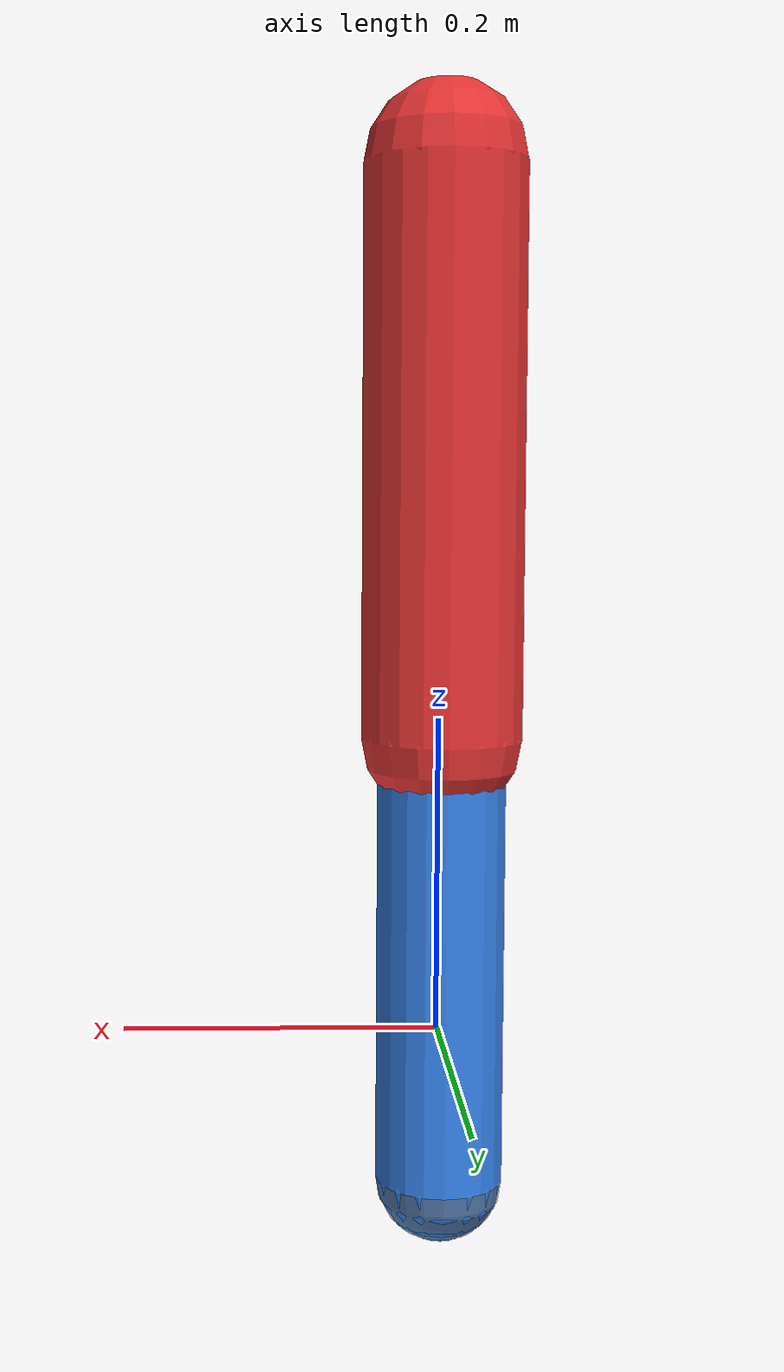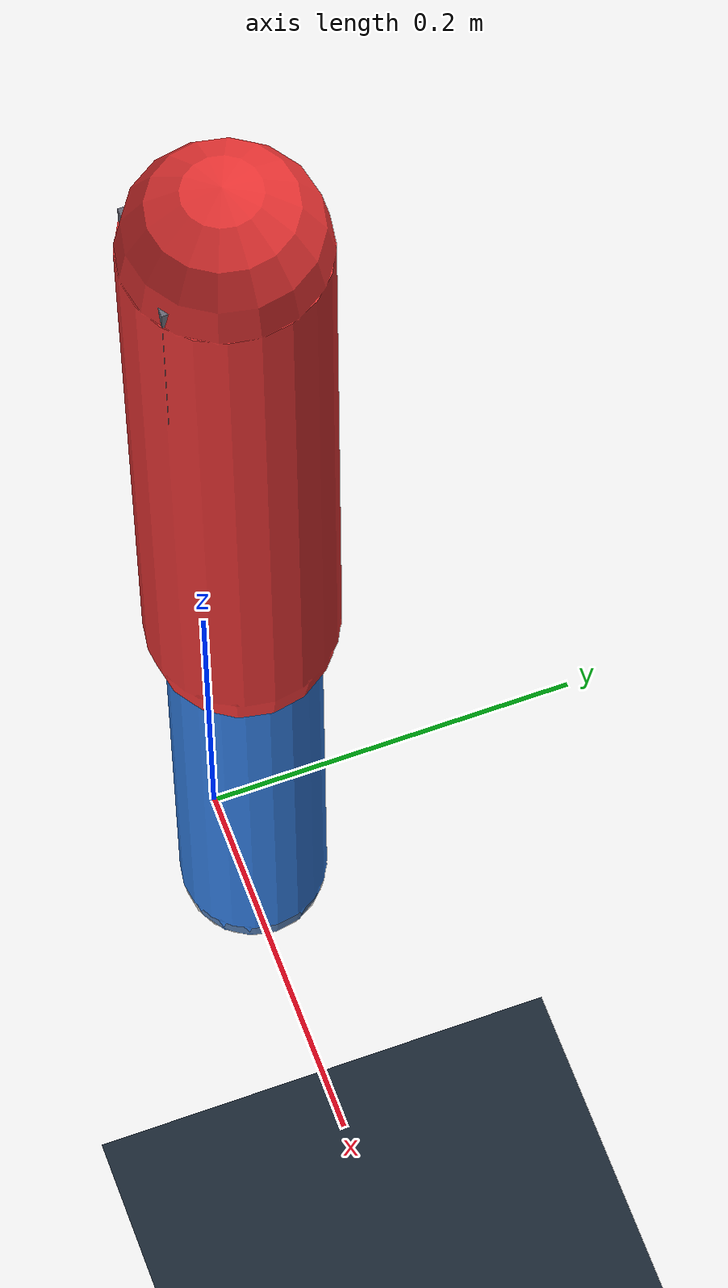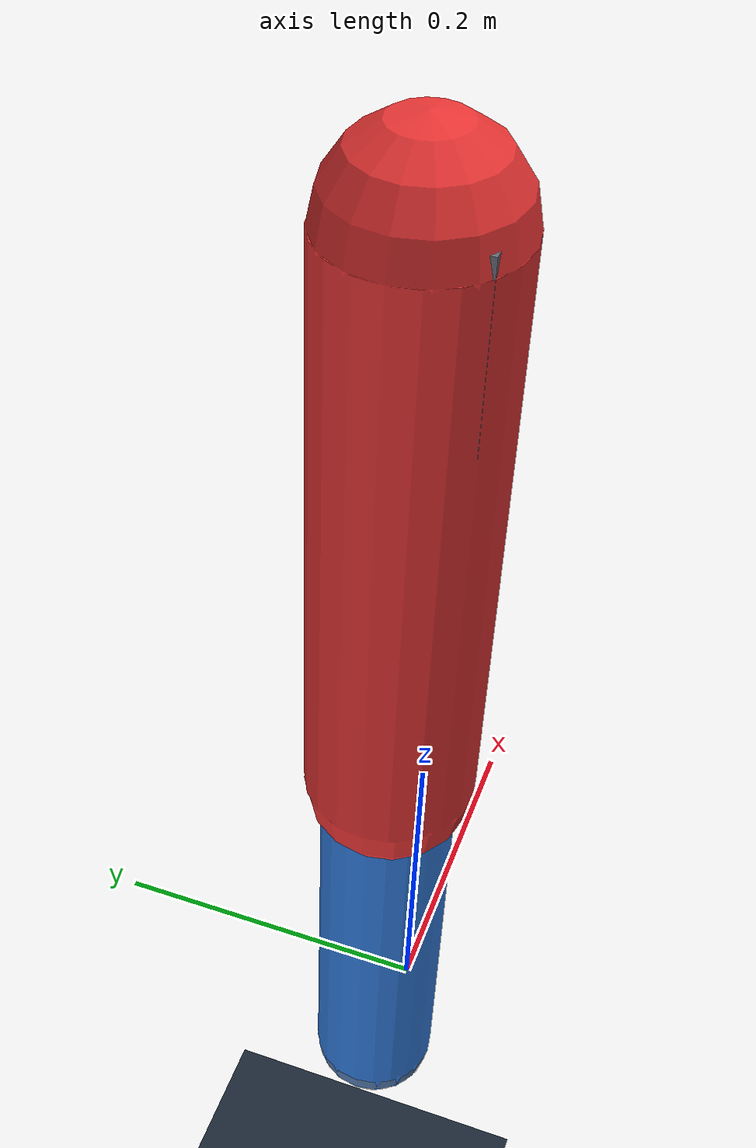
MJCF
<mujoco>
  <option timestep="0.01" gravity="0 0 -9.81"/>

  <visual>
    <headlight ambient="0.3 0.3 0.3" diffuse="0.8 0.8 0.8" specular="0.3 0.3 0.3"/>
  </visual>

  <worldbody>
    <light name="main" pos="2 2 2" directional="true"/>
    <light name="fill" pos="-1 1 1" directional="true"/>

    <!-- Пол -->
    <geom type="plane" size="3 3 0.1" rgba="0.1 0.15 0.2 1" pos="0 0 -0.6"/>

    <!-- Торс (база) -->
    <body name="torso" pos="0 0 0.5">
      <geom type="box" size="0.03 0.02 0.05" rgba="0.4 0.4 0.45 1"/>

      <body name="upper_arm" pos="0 0.02 0.04">
        <joint name="shoulder" type="hinge" axis="0 1 0"
               range="-90 90" damping="0.5" pos="0 0 0"/>

        <geom type="capsule" fromto="0 0 0 0 0 -0.35"
              size="0.05" rgba="0.9 0.2 0.2 1"/>

        <geom type="sphere" size="0.04" rgba="0.9 0.5 0.2 1" pos="0 0 -0.35"/>

        <!-- Предплечье (звено 2) -->
        <body name="forearm" pos="0 0 -0.35">
          <joint name="elbow" type="hinge" axis="0 1 0"
                 range="-130 0" damping="0.3" pos="0 0 0"/>

          <geom type="capsule" fromto="0 0 0 0 0 -0.28"
                size="0.04" rgba="0.2 0.5 0.9 1"/>

          <geom type="sphere" size="0.035" rgba="0.9 0.8 0.2 1" pos="0 0 -0.28"/>

          <!-- Груз в руке (опционально) -->
          <body name="load" pos="0 0 -0.28">
            <geom name="load_geom" type="sphere" size="0.04" rgba="0.5 0.5 0.5 0.5"
                  mass="0.0"/>
          </body>
        </body>
      </body>
    </body>
  </worldbody>

  <actuator>
    <motor name="shoulder_motor" joint="shoulder" gear="1.0" ctrlrange="-90 90"/>
    <motor name="elbow_motor" joint="elbow" gear="1.0" ctrlrange="-90 90"/>
  </actuator>

  <sensor>
    <actuatorfrc name="shoulder_force" actuator="shoulder_motor"/>
    <actuatorfrc name="elbow_force" actuator="elbow_motor"/>
    <jointpos name="shoulder_pos" joint="shoulder"/>
    <jointpos name="elbow_pos" joint="elbow"/>
  </sensor>
</mujoco>
